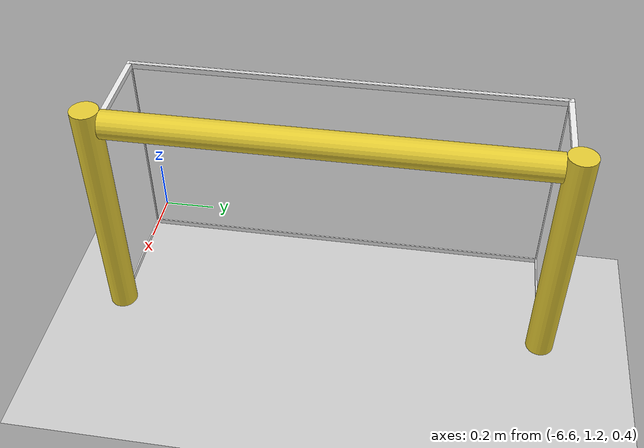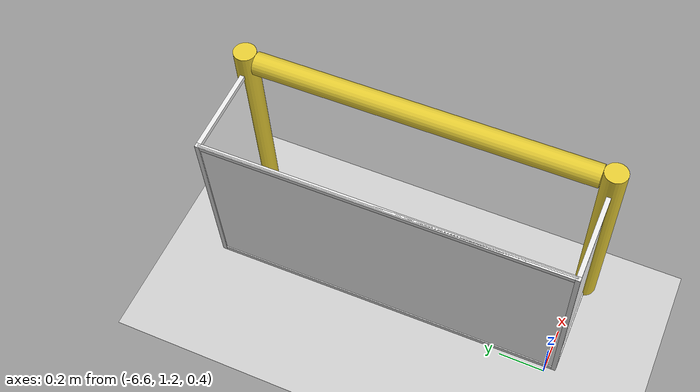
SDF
<sdf version="1.6">
 <world name="default">
  <model name="ground_plane">
   <static>1</static>
   <link name="link">
    <collision name="collision">
     <geometry><plane><normal>0 0 1</normal><size>100 100</size></plane></geometry>
     <surface><friction><ode><mu>100</mu><mu2>50</mu2></ode></friction></surface>
    </collision>
    <visual name="visual">
     <cast_shadows>0</cast_shadows>
     <geometry><plane><normal>0 0 1</normal><size>100 100</size></plane></geometry>
     <material>
      <script><uri>file://media/materials/scripts/gazebo.material</uri><name>Gazebo/Grey</name></script>
     </material>
    </visual>
   </link>
  </model>
  <model name="RoboCup_2014_SPL_Goal_clone_0">
   <link name="left_post">
    <pose>-0 0.8 0.45 0 -0 0</pose>
    <visual name="visual">
     <geometry><cylinder><radius>0.05</radius><length>0.9</length></cylinder></geometry>
     <material>
      <script><uri>file://media/materials/scripts/gazebo.material</uri><name>Gazebo/ZincYellow</name></script>
      <ambient>0.9725 0.9529 0.2078 1</ambient>
      <diffuse>0.9725 0.9529 0.2078 1</diffuse>
      <specular>0.9725 0.9529 0.2078 1</specular>
      <emissive>0 0 0 1</emissive>
     </material>
    </visual>
    <collision name="collision">
     <geometry><cylinder><radius>0.05</radius><length>0.9</length></cylinder></geometry>
     <surface>
      <friction>
       <ode><mu>1</mu><mu2>1</mu2><fdir1>0 0 0</fdir1><slip1>0</slip1><slip2>0</slip2></ode>
       <torsional>
        <coefficient>1</coefficient>
        <patch_radius>0</patch_radius>
        <surface_radius>0</surface_radius>
        <use_patch_radius>1</use_patch_radius>
        <ode><slip>0</slip></ode>
       </torsional>
      </friction>
      <bounce><restitution_coefficient>0</restitution_coefficient><threshold>1e+06</threshold></bounce>
      <contact>
       <collide_without_contact>0</collide_without_contact>
       <collide_without_contact_bitmask>1</collide_without_contact_bitmask>
       <collide_bitmask>1</collide_bitmask>
       <ode>
        <soft_cfm>0</soft_cfm>
        <soft_erp>0.2</soft_erp>
        <kp>1e+13</kp>
        <kd>1</kd>
        <max_vel>0.01</max_vel>
        <min_depth>0</min_depth>
       </ode>
       <bullet>
        <split_impulse>1</split_impulse>
        <split_impulse_penetration_threshold>-0.01</split_impulse_penetration_threshold>
        <soft_cfm>0</soft_cfm>
        <soft_erp>0.2</soft_erp>
        <kp>1e+13</kp>
        <kd>1</kd>
       </bullet>
      </contact>
     </surface>
    </collision>
   </link>
   <link name="center_net">
    <pose>0.44 -0 0.4 0 -0 0</pose>
    <inertial>
     <mass>1</mass>
     <inertia><ixx>1</ixx><ixy>0</ixy><ixz>0</ixz><iyy>1</iyy><iyz>0</iyz><izz>1</izz></inertia>
    </inertial>
    <visual name="visual">
     <geometry><box><size>0.01 1.6 0.8</size></box></geometry>
     <material>
      <script>
       <uri>model://robocup09_spl_field/materials/scripts/</uri>
       <uri>model://robocup09_spl_field/materials/textures/</uri>
       <name>RoboCup/Net</name>
      </script>
      <ambient>1 1 1 1</ambient>
      <diffuse>1 1 1 1</diffuse>
      <specular>0 0 0 1</specular>
      <emissive>1 1 0 1</emissive>
      <shader type="vertex"><normal_map>__default__</normal_map></shader>
     </material>
    </visual>
    <collision name="collision">
     <geometry><box><size>0.01 1.6 0.8</size></box></geometry>
     <surface>
      <friction>
       <ode><mu>1</mu><mu2>1</mu2><fdir1>0 0 0</fdir1><slip1>0</slip1><slip2>0</slip2></ode>
       <torsional>
        <coefficient>1</coefficient>
        <patch_radius>0</patch_radius>
        <surface_radius>0</surface_radius>
        <use_patch_radius>1</use_patch_radius>
        <ode><slip>0</slip></ode>
       </torsional>
      </friction>
      <bounce><restitution_coefficient>0</restitution_coefficient><threshold>1e+06</threshold></bounce>
      <contact>
       <collide_without_contact>0</collide_without_contact>
       <collide_without_contact_bitmask>1</collide_without_contact_bitmask>
       <collide_bitmask>1</collide_bitmask>
       <ode>
        <soft_cfm>0</soft_cfm>
        <soft_erp>0.2</soft_erp>
        <kp>1e+13</kp>
        <kd>1</kd>
        <max_vel>0.01</max_vel>
        <min_depth>0</min_depth>
       </ode>
       <bullet>
        <split_impulse>1</split_impulse>
        <split_impulse_penetration_threshold>-0.01</split_impulse_penetration_threshold>
        <soft_cfm>0</soft_cfm>
        <soft_erp>0.2</soft_erp>
        <kp>1e+13</kp>
        <kd>1</kd>
       </bullet>
      </contact>
     </surface>
    </collision>
   </link>
   <link name="center_support_horiz_lower">
    <pose>0.44 -0 0.01 3.14158 1.57079 3.14158</pose>
    <visual name="visual">
     <geometry><box><size>0.02 1.58 0.02</size></box></geometry>
     <material>
      <script><uri>file://media/materials/scripts/gazebo.material</uri><name>Gazebo/White</name></script>
      <ambient>1 1 1 1</ambient>
      <diffuse>1 1 1 1</diffuse>
      <specular>0 0 0 1</specular>
      <emissive>0 0 0 1</emissive>
     </material>
    </visual>
    <collision name="collision">
     <geometry><box><size>0.02 1.58 0.02</size></box></geometry>
     <surface>
      <friction>
       <ode><mu>1</mu><mu2>1</mu2><fdir1>0 0 0</fdir1><slip1>0</slip1><slip2>0</slip2></ode>
       <torsional>
        <coefficient>1</coefficient>
        <patch_radius>0</patch_radius>
        <surface_radius>0</surface_radius>
        <use_patch_radius>1</use_patch_radius>
        <ode><slip>0</slip></ode>
       </torsional>
      </friction>
      <bounce><restitution_coefficient>0</restitution_coefficient><threshold>1e+06</threshold></bounce>
      <contact>
       <collide_without_contact>0</collide_without_contact>
       <collide_without_contact_bitmask>1</collide_without_contact_bitmask>
       <collide_bitmask>1</collide_bitmask>
       <ode>
        <soft_cfm>0</soft_cfm>
        <soft_erp>0.2</soft_erp>
        <kp>1e+13</kp>
        <kd>1</kd>
        <max_vel>0.01</max_vel>
        <min_depth>0</min_depth>
       </ode>
       <bullet>
        <split_impulse>1</split_impulse>
        <split_impulse_penetration_threshold>-0.01</split_impulse_penetration_threshold>
        <soft_cfm>0</soft_cfm>
        <soft_erp>0.2</soft_erp>
        <kp>1e+13</kp>
        <kd>1</kd>
       </bullet>
      </contact>
     </surface>
    </collision>
   </link>
   <link name="center_support_horiz_upper">
    <pose>0.44 -0 0.79 3.14158 1.57079 3.14158</pose>
    <visual name="visual">
     <geometry><box><size>0.02 1.58 0.02</size></box></geometry>
     <material>
      <script><uri>file://media/materials/scripts/gazebo.material</uri><name>Gazebo/White</name></script>
      <ambient>1 1 1 1</ambient>
      <diffuse>1 1 1 1</diffuse>
      <specular>0 0 0 1</specular>
      <emissive>0 0 0 1</emissive>
     </material>
    </visual>
    <collision name="collision">
     <geometry><box><size>0.02 1.58 0.02</size></box></geometry>
     <surface>
      <friction>
       <ode><mu>1</mu><mu2>1</mu2><fdir1>0 0 0</fdir1><slip1>0</slip1><slip2>0</slip2></ode>
       <torsional>
        <coefficient>1</coefficient>
        <patch_radius>0</patch_radius>
        <surface_radius>0</surface_radius>
        <use_patch_radius>1</use_patch_radius>
        <ode><slip>0</slip></ode>
       </torsional>
      </friction>
      <bounce><restitution_coefficient>0</restitution_coefficient><threshold>1e+06</threshold></bounce>
      <contact>
       <collide_without_contact>0</collide_without_contact>
       <collide_without_contact_bitmask>1</collide_without_contact_bitmask>
       <collide_bitmask>1</collide_bitmask>
       <ode>
        <soft_cfm>0</soft_cfm>
        <soft_erp>0.2</soft_erp>
        <kp>1e+13</kp>
        <kd>1</kd>
        <max_vel>0.01</max_vel>
        <min_depth>0</min_depth>
       </ode>
       <bullet>
        <split_impulse>1</split_impulse>
        <split_impulse_penetration_threshold>-0.01</split_impulse_penetration_threshold>
        <soft_cfm>0</soft_cfm>
        <soft_erp>0.2</soft_erp>
        <kp>1e+13</kp>
        <kd>1</kd>
       </bullet>
      </contact>
     </surface>
    </collision>
   </link>
   <link name="crossbar">
    <pose>0 0 0.85 1.57011 1.57 0.000106</pose>
    <visual name="visual">
     <geometry><cylinder><radius>0.05</radius><length>1.5</length></cylinder></geometry>
     <material>
      <script><uri>file://media/materials/scripts/gazebo.material</uri><name>Gazebo/ZincYellow</name></script>
      <ambient>0.9725 0.9529 0.2078 1</ambient>
      <diffuse>0.9725 0.9529 0.2078 1</diffuse>
      <specular>0.9725 0.9529 0.2078 1</specular>
      <emissive>0 0 0 1</emissive>
     </material>
    </visual>
    <collision name="collision">
     <geometry><cylinder><radius>0.05</radius><length>1.5</length></cylinder></geometry>
     <surface>
      <friction>
       <ode><mu>1</mu><mu2>1</mu2><fdir1>0 0 0</fdir1><slip1>0</slip1><slip2>0</slip2></ode>
       <torsional>
        <coefficient>1</coefficient>
        <patch_radius>0</patch_radius>
        <surface_radius>0</surface_radius>
        <use_patch_radius>1</use_patch_radius>
        <ode><slip>0</slip></ode>
       </torsional>
      </friction>
      <bounce><restitution_coefficient>0</restitution_coefficient><threshold>1e+06</threshold></bounce>
      <contact>
       <collide_without_contact>0</collide_without_contact>
       <collide_without_contact_bitmask>1</collide_without_contact_bitmask>
       <collide_bitmask>1</collide_bitmask>
       <ode>
        <soft_cfm>0</soft_cfm>
        <soft_erp>0.2</soft_erp>
        <kp>1e+13</kp>
        <kd>1</kd>
        <max_vel>0.01</max_vel>
        <min_depth>0</min_depth>
       </ode>
       <bullet>
        <split_impulse>1</split_impulse>
        <split_impulse_penetration_threshold>-0.01</split_impulse_penetration_threshold>
        <soft_cfm>0</soft_cfm>
        <soft_erp>0.2</soft_erp>
        <kp>1e+13</kp>
        <kd>1</kd>
       </bullet>
      </contact>
     </surface>
    </collision>
   </link>
   <link name="left_net">
    <pose>0.24 0.8 0.4 0 -0 0</pose>
    <visual name="visual">
     <geometry><box><size>0.38 0.01 0.76</size></box></geometry>
     <material>
      <script>
       <uri>model://robocup09_spl_field/materials/scripts/</uri>
       <uri>model://robocup09_spl_field/materials/textures/</uri>
       <name>RoboCup/Net</name>
      </script>
      <ambient>1 1 1 1</ambient>
      <diffuse>1 1 1 1</diffuse>
      <specular>0 0 0 1</specular>
      <emissive>0 0 0 1</emissive>
     </material>
    </visual>
    <collision name="collision">
     <geometry><box><size>0.38 0.01 0.76</size></box></geometry>
     <surface>
      <friction>
       <ode><mu>1</mu><mu2>1</mu2><fdir1>0 0 0</fdir1><slip1>0</slip1><slip2>0</slip2></ode>
       <torsional>
        <coefficient>1</coefficient>
        <patch_radius>0</patch_radius>
        <surface_radius>0</surface_radius>
        <use_patch_radius>1</use_patch_radius>
        <ode><slip>0</slip></ode>
       </torsional>
      </friction>
      <bounce><restitution_coefficient>0</restitution_coefficient><threshold>1e+06</threshold></bounce>
      <contact>
       <collide_without_contact>0</collide_without_contact>
       <collide_without_contact_bitmask>1</collide_without_contact_bitmask>
       <collide_bitmask>1</collide_bitmask>
       <ode>
        <soft_cfm>0</soft_cfm>
        <soft_erp>0.2</soft_erp>
        <kp>1e+13</kp>
        <kd>1</kd>
        <max_vel>0.01</max_vel>
        <min_depth>0</min_depth>
       </ode>
       <bullet>
        <split_impulse>1</split_impulse>
        <split_impulse_penetration_threshold>-0.01</split_impulse_penetration_threshold>
        <soft_cfm>0</soft_cfm>
        <soft_erp>0.2</soft_erp>
        <kp>1e+13</kp>
        <kd>1</kd>
       </bullet>
      </contact>
     </surface>
    </collision>
   </link>
   <link name="left_support_horiz_lower">
    <pose>0.24 0.8 0.01 0 -0 0</pose>
    <visual name="visual">
     <geometry><box><size>0.38 0.02 0.02</size></box></geometry>
     <material>
      <script><uri>file://media/materials/scripts/gazebo.material</uri><name>Gazebo/White</name></script>
      <ambient>1 1 1 1</ambient>
      <diffuse>1 1 1 1</diffuse>
      <specular>0 0 0 1</specular>
      <emissive>0 0 0 1</emissive>
     </material>
    </visual>
    <collision name="collision">
     <geometry><box><size>0.38 0.02 0.02</size></box></geometry>
     <surface>
      <friction>
       <ode><mu>1</mu><mu2>1</mu2><fdir1>0 0 0</fdir1><slip1>0</slip1><slip2>0</slip2></ode>
       <torsional>
        <coefficient>1</coefficient>
        <patch_radius>0</patch_radius>
        <surface_radius>0</surface_radius>
        <use_patch_radius>1</use_patch_radius>
        <ode><slip>0</slip></ode>
       </torsional>
      </friction>
      <bounce><restitution_coefficient>0</restitution_coefficient><threshold>1e+06</threshold></bounce>
      <contact>
       <collide_without_contact>0</collide_without_contact>
       <collide_without_contact_bitmask>1</collide_without_contact_bitmask>
       <collide_bitmask>1</collide_bitmask>
       <ode>
        <soft_cfm>0</soft_cfm>
        <soft_erp>0.2</soft_erp>
        <kp>1e+13</kp>
        <kd>1</kd>
        <max_vel>0.01</max_vel>
        <min_depth>0</min_depth>
       </ode>
       <bullet>
        <split_impulse>1</split_impulse>
        <split_impulse_penetration_threshold>-0.01</split_impulse_penetration_threshold>
        <soft_cfm>0</soft_cfm>
        <soft_erp>0.2</soft_erp>
        <kp>1e+13</kp>
        <kd>1</kd>
       </bullet>
      </contact>
     </surface>
    </collision>
   </link>
   <link name="left_support_horiz_upper">
    <pose>0.24 0.8 0.79 0 -0 0</pose>
    <visual name="visual">
     <geometry><box><size>0.38 0.02 0.02</size></box></geometry>
     <material>
      <script><uri>file://media/materials/scripts/gazebo.material</uri><name>Gazebo/White</name></script>
      <ambient>1 1 1 1</ambient>
      <diffuse>1 1 1 1</diffuse>
      <specular>0 0 0 1</specular>
      <emissive>0 0 0 1</emissive>
     </material>
    </visual>
    <collision name="collision">
     <geometry><box><size>0.38 0.02 0.02</size></box></geometry>
     <surface>
      <friction>
       <ode><mu>1</mu><mu2>1</mu2><fdir1>0 0 0</fdir1><slip1>0</slip1><slip2>0</slip2></ode>
       <torsional>
        <coefficient>1</coefficient>
        <patch_radius>0</patch_radius>
        <surface_radius>0</surface_radius>
        <use_patch_radius>1</use_patch_radius>
        <ode><slip>0</slip></ode>
       </torsional>
      </friction>
      <bounce><restitution_coefficient>0</restitution_coefficient><threshold>1e+06</threshold></bounce>
      <contact>
       <collide_without_contact>0</collide_without_contact>
       <collide_without_contact_bitmask>1</collide_without_contact_bitmask>
       <collide_bitmask>1</collide_bitmask>
       <ode>
        <soft_cfm>0</soft_cfm>
        <soft_erp>0.2</soft_erp>
        <kp>1e+13</kp>
        <kd>1</kd>
        <max_vel>0.01</max_vel>
        <min_depth>0</min_depth>
       </ode>
       <bullet>
        <split_impulse>1</split_impulse>
        <split_impulse_penetration_threshold>-0.01</split_impulse_penetration_threshold>
        <soft_cfm>0</soft_cfm>
        <soft_erp>0.2</soft_erp>
        <kp>1e+13</kp>
        <kd>1</kd>
       </bullet>
      </contact>
     </surface>
    </collision>
   </link>
   <link name="left_support_vertical">
    <pose>0.44 0.8 0.4 3.14158 1.57079 3.14158</pose>
    <visual name="visual">
     <geometry><box><size>0.8 0.02 0.02</size></box></geometry>
     <material>
      <script><uri>file://media/materials/scripts/gazebo.material</uri><name>Gazebo/White</name></script>
      <ambient>1 1 1 1</ambient>
      <diffuse>1 1 1 1</diffuse>
      <specular>0 0 0 1</specular>
      <emissive>0 0 0 1</emissive>
     </material>
    </visual>
    <collision name="collision">
     <geometry><box><size>0.8 0.02 0.02</size></box></geometry>
     <surface>
      <friction>
       <ode><mu>1</mu><mu2>1</mu2><fdir1>0 0 0</fdir1><slip1>0</slip1><slip2>0</slip2></ode>
       <torsional>
        <coefficient>1</coefficient>
        <patch_radius>0</patch_radius>
        <surface_radius>0</surface_radius>
        <use_patch_radius>1</use_patch_radius>
        <ode><slip>0</slip></ode>
       </torsional>
      </friction>
      <bounce><restitution_coefficient>0</restitution_coefficient><threshold>1e+06</threshold></bounce>
      <contact>
       <collide_without_contact>0</collide_without_contact>
       <collide_without_contact_bitmask>1</collide_without_contact_bitmask>
       <collide_bitmask>1</collide_bitmask>
       <ode>
        <soft_cfm>0</soft_cfm>
        <soft_erp>0.2</soft_erp>
        <kp>1e+13</kp>
        <kd>1</kd>
        <max_vel>0.01</max_vel>
        <min_depth>0</min_depth>
       </ode>
       <bullet>
        <split_impulse>1</split_impulse>
        <split_impulse_penetration_threshold>-0.01</split_impulse_penetration_threshold>
        <soft_cfm>0</soft_cfm>
        <soft_erp>0.2</soft_erp>
        <kp>1e+13</kp>
        <kd>1</kd>
       </bullet>
      </contact>
     </surface>
    </collision>
   </link>
   <link name="right_net">
    <pose>0.24 -0.8 0.4 0 -0 0</pose>
    <visual name="visual">
     <geometry><box><size>0.38 0.01 0.76</size></box></geometry>
     <material>
      <script>
       <uri>model://robocup09_spl_field/materials/scripts/</uri>
       <uri>model://robocup09_spl_field/materials/textures/</uri>
       <name>RoboCup/Net</name>
      </script>
      <ambient>1 1 1 1</ambient>
      <diffuse>1 1 1 1</diffuse>
      <specular>0 0 0 1</specular>
      <emissive>0 0 0 1</emissive>
     </material>
    </visual>
    <collision name="collision">
     <geometry><box><size>0.38 0.01 0.76</size></box></geometry>
     <surface>
      <friction>
       <ode><mu>1</mu><mu2>1</mu2><fdir1>0 0 0</fdir1><slip1>0</slip1><slip2>0</slip2></ode>
       <torsional>
        <coefficient>1</coefficient>
        <patch_radius>0</patch_radius>
        <surface_radius>0</surface_radius>
        <use_patch_radius>1</use_patch_radius>
        <ode><slip>0</slip></ode>
       </torsional>
      </friction>
      <bounce><restitution_coefficient>0</restitution_coefficient><threshold>1e+06</threshold></bounce>
      <contact>
       <collide_without_contact>0</collide_without_contact>
       <collide_without_contact_bitmask>1</collide_without_contact_bitmask>
       <collide_bitmask>1</collide_bitmask>
       <ode>
        <soft_cfm>0</soft_cfm>
        <soft_erp>0.2</soft_erp>
        <kp>1e+13</kp>
        <kd>1</kd>
        <max_vel>0.01</max_vel>
        <min_depth>0</min_depth>
       </ode>
       <bullet>
        <split_impulse>1</split_impulse>
        <split_impulse_penetration_threshold>-0.01</split_impulse_penetration_threshold>
        <soft_cfm>0</soft_cfm>
        <soft_erp>0.2</soft_erp>
        <kp>1e+13</kp>
        <kd>1</kd>
       </bullet>
      </contact>
     </surface>
    </collision>
   </link>
   <link name="right_post">
    <pose>0 -0.8 0.45 0 -0 0</pose>
    <visual name="visual">
     <geometry><cylinder><radius>0.05</radius><length>0.9</length></cylinder></geometry>
     <material>
      <script><uri>file://media/materials/scripts/gazebo.material</uri><name>Gazebo/ZincYellow</name></script>
      <ambient>0.9725 0.9529 0.2078 1</ambient>
      <diffuse>0.9725 0.9529 0.2078 1</diffuse>
      <specular>0.9725 0.9529 0.2078 1</specular>
      <emissive>0 0 0 1</emissive>
     </material>
    </visual>
    <collision name="collision">
     <geometry><cylinder><radius>0.05</radius><length>0.9</length></cylinder></geometry>
     <surface>
      <friction>
       <ode><mu>1</mu><mu2>1</mu2><fdir1>0 0 0</fdir1><slip1>0</slip1><slip2>0</slip2></ode>
       <torsional>
        <coefficient>1</coefficient>
        <patch_radius>0</patch_radius>
        <surface_radius>0</surface_radius>
        <use_patch_radius>1</use_patch_radius>
        <ode><slip>0</slip></ode>
       </torsional>
      </friction>
      <bounce><restitution_coefficient>0</restitution_coefficient><threshold>1e+06</threshold></bounce>
      <contact>
       <collide_without_contact>0</collide_without_contact>
       <collide_without_contact_bitmask>1</collide_without_contact_bitmask>
       <collide_bitmask>1</collide_bitmask>
       <ode>
        <soft_cfm>0</soft_cfm>
        <soft_erp>0.2</soft_erp>
        <kp>1e+13</kp>
        <kd>1</kd>
        <max_vel>0.01</max_vel>
        <min_depth>0</min_depth>
       </ode>
       <bullet>
        <split_impulse>1</split_impulse>
        <split_impulse_penetration_threshold>-0.01</split_impulse_penetration_threshold>
        <soft_cfm>0</soft_cfm>
        <soft_erp>0.2</soft_erp>
        <kp>1e+13</kp>
        <kd>1</kd>
       </bullet>
      </contact>
     </surface>
    </collision>
   </link>
   <link name="right_support_horiz_lower">
    <pose>0.24 -0.8 0.01 0 -0 0</pose>
    <visual name="visual">
     <geometry><box><size>0.38 0.02 0.02</size></box></geometry>
     <material>
      <script><uri>file://media/materials/scripts/gazebo.material</uri><name>Gazebo/White</name></script>
      <ambient>1 1 1 1</ambient>
      <diffuse>1 1 1 1</diffuse>
      <specular>0 0 0 1</specular>
      <emissive>0 0 0 1</emissive>
     </material>
    </visual>
    <collision name="collision">
     <geometry><box><size>0.38 0.02 0.02</size></box></geometry>
     <surface>
      <friction>
       <ode><mu>1</mu><mu2>1</mu2><fdir1>0 0 0</fdir1><slip1>0</slip1><slip2>0</slip2></ode>
       <torsional>
        <coefficient>1</coefficient>
        <patch_radius>0</patch_radius>
        <surface_radius>0</surface_radius>
        <use_patch_radius>1</use_patch_radius>
        <ode><slip>0</slip></ode>
       </torsional>
      </friction>
      <bounce><restitution_coefficient>0</restitution_coefficient><threshold>1e+06</threshold></bounce>
      <contact>
       <collide_without_contact>0</collide_without_contact>
       <collide_without_contact_bitmask>1</collide_without_contact_bitmask>
       <collide_bitmask>1</collide_bitmask>
       <ode>
        <soft_cfm>0</soft_cfm>
        <soft_erp>0.2</soft_erp>
        <kp>1e+13</kp>
        <kd>1</kd>
        <max_vel>0.01</max_vel>
        <min_depth>0</min_depth>
       </ode>
       <bullet>
        <split_impulse>1</split_impulse>
        <split_impulse_penetration_threshold>-0.01</split_impulse_penetration_threshold>
        <soft_cfm>0</soft_cfm>
        <soft_erp>0.2</soft_erp>
        <kp>1e+13</kp>
        <kd>1</kd>
       </bullet>
      </contact>
     </surface>
    </collision>
   </link>
   <link name="right_support_horiz_upper">
    <pose>0.24 -0.8 0.79 0 -0 0</pose>
    <visual name="visual">
     <geometry><box><size>0.38 0.02 0.02</size></box></geometry>
     <material>
      <script><uri>file://media/materials/scripts/gazebo.material</uri><name>Gazebo/White</name></script>
      <ambient>1 1 1 1</ambient>
      <diffuse>1 1 1 1</diffuse>
      <specular>0 0 0 1</specular>
      <emissive>0 0 0 1</emissive>
     </material>
    </visual>
    <collision name="collision">
     <geometry><box><size>0.38 0.02 0.02</size></box></geometry>
     <surface>
      <friction>
       <ode><mu>1</mu><mu2>1</mu2><fdir1>0 0 0</fdir1><slip1>0</slip1><slip2>0</slip2></ode>
       <torsional>
        <coefficient>1</coefficient>
        <patch_radius>0</patch_radius>
        <surface_radius>0</surface_radius>
        <use_patch_radius>1</use_patch_radius>
        <ode><slip>0</slip></ode>
       </torsional>
      </friction>
      <bounce><restitution_coefficient>0</restitution_coefficient><threshold>1e+06</threshold></bounce>
      <contact>
       <collide_without_contact>0</collide_without_contact>
       <collide_without_contact_bitmask>1</collide_without_contact_bitmask>
       <collide_bitmask>1</collide_bitmask>
       <ode>
        <soft_cfm>0</soft_cfm>
        <soft_erp>0.2</soft_erp>
        <kp>1e+13</kp>
        <kd>1</kd>
        <max_vel>0.01</max_vel>
        <min_depth>0</min_depth>
       </ode>
       <bullet>
        <split_impulse>1</split_impulse>
        <split_impulse_penetration_threshold>-0.01</split_impulse_penetration_threshold>
        <soft_cfm>0</soft_cfm>
        <soft_erp>0.2</soft_erp>
        <kp>1e+13</kp>
        <kd>1</kd>
       </bullet>
      </contact>
     </surface>
    </collision>
   </link>
   <link name="right_support_vertical">
    <pose>0.44 -0.8 0.4 3.14158 1.57079 3.14158</pose>
    <visual name="visual">
     <geometry><box><size>0.8 0.02 0.02</size></box></geometry>
     <material>
      <script><uri>file://media/materials/scripts/gazebo.material</uri><name>Gazebo/White</name></script>
      <ambient>1 1 1 1</ambient>
      <diffuse>1 1 1 1</diffuse>
      <specular>0 0 0 1</specular>
      <emissive>0 0 0 1</emissive>
     </material>
    </visual>
    <collision name="collision">
     <geometry><box><size>0.8 0.02 0.02</size></box></geometry>
     <surface>
      <friction>
       <ode><mu>1</mu><mu2>1</mu2><fdir1>0 0 0</fdir1><slip1>0</slip1><slip2>0</slip2></ode>
       <torsional>
        <coefficient>1</coefficient>
        <patch_radius>0</patch_radius>
        <surface_radius>0</surface_radius>
        <use_patch_radius>1</use_patch_radius>
        <ode><slip>0</slip></ode>
       </torsional>
      </friction>
      <bounce><restitution_coefficient>0</restitution_coefficient><threshold>1e+06</threshold></bounce>
      <contact>
       <collide_without_contact>0</collide_without_contact>
       <collide_without_contact_bitmask>1</collide_without_contact_bitmask>
       <collide_bitmask>1</collide_bitmask>
       <ode>
        <soft_cfm>0</soft_cfm>
        <soft_erp>0.2</soft_erp>
        <kp>1e+13</kp>
        <kd>1</kd>
        <max_vel>0.01</max_vel>
        <min_depth>0</min_depth>
       </ode>
       <bullet>
        <split_impulse>1</split_impulse>
        <split_impulse_penetration_threshold>-0.01</split_impulse_penetration_threshold>
        <soft_cfm>0</soft_cfm>
        <soft_erp>0.2</soft_erp>
        <kp>1e+13</kp>
        <kd>1</kd>
       </bullet>
      </contact>
     </surface>
    </collision>
   </link>
   <static>1</static>
   <pose>-6.10818 1.96795 0.34145 0 0 -3.13532</pose>
  </model>
 </world>
</sdf>
